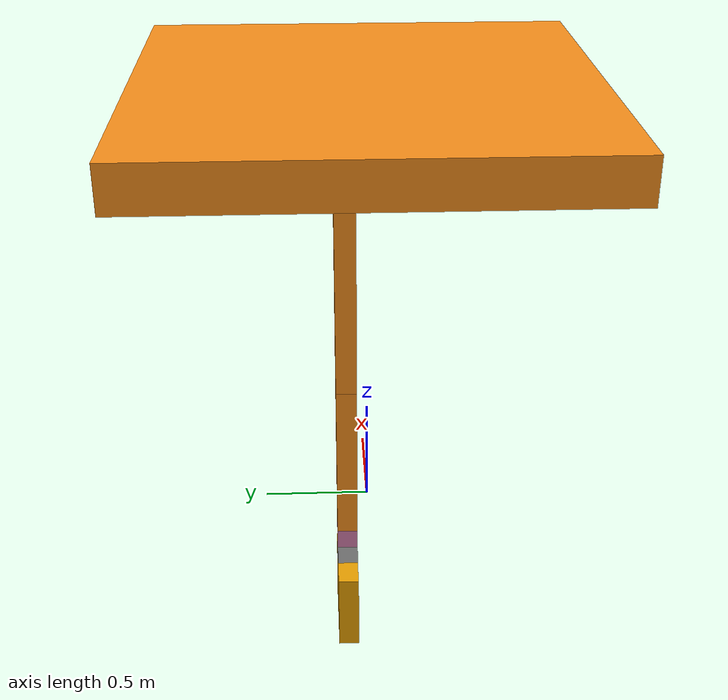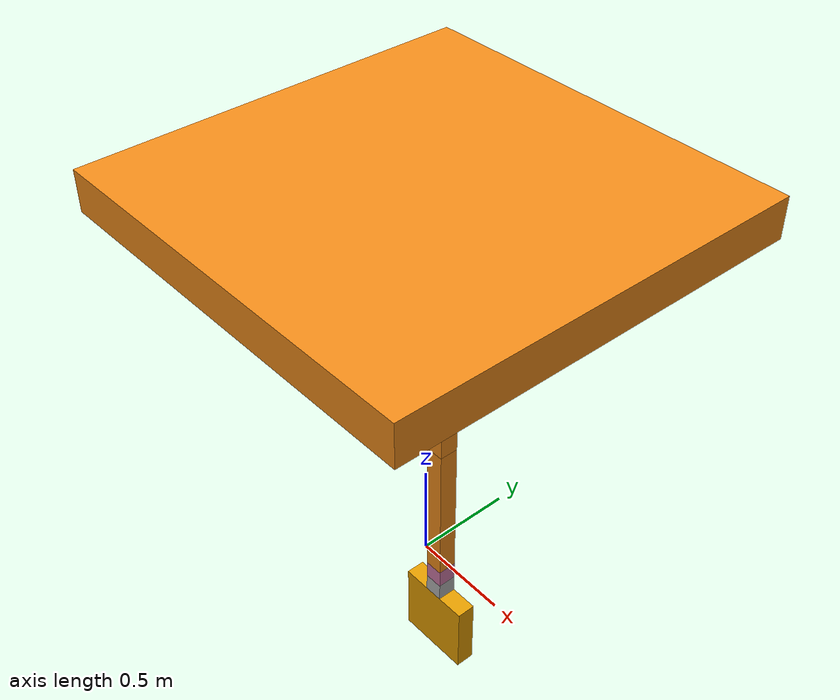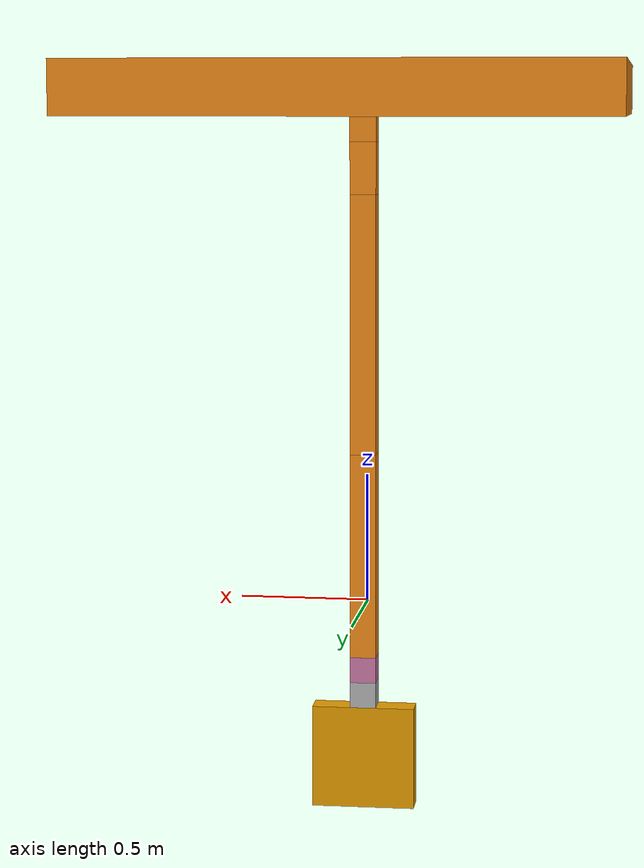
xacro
<?xml version='1.0'?>
<robot name="manipulator" xmlns:xacro="http://www.ros.org/wiki/xacro">

<!--constants of the manipulator, characterstics-->
<!-- Constants for robot dimensions -->
<xacro:property name="width" value="0.1" />
<xacro:property name="height1" value="2" />
<xacro:property name="height2" value="1" />
<xacro:property name="height3" value="1" />
<xacro:property name="mass1" value="10" />
<xacro:property name="mass2" value="7" />
<xacro:property name="mass3" value="5" />
<xacro:property name="mass4" value="1" />
<xacro:property name="mass5" value="0.8" />
<xacro:property name="axle_offset" value="0.05" />
<xacro:property name="damp" value="0.7" />

  <!-- Import all Gazebo-customization elements, including Gazebo colors -->
  <xacro:include filename="$(find aeriaman)/urdf/man.gazebo" />
  <!-- Import Rviz colors -->
  <!--xacro:include filename="$(find aeriaman)/urdf/materials.xacro" /-->

  <!-- Used for fixing robot to Gazebo 'base_link' -->
  <link name="world"/>

  <joint name="fixed" type="fixed">
    <parent link="world"/>
    <child link="base_link"/>
  </joint>

<!-- Base Link -->
<link name="base_link">
<visual> <origin xyz="0 0 2" rpy="0 0 0" /> <geometry> <box size= "2 2 0.2" /> <material name="blue"> <color rgba="0 0 .8 1"/> </material></geometry> </visual>
<collision> <origin xyz="0 0 2" rpy="0 0 0" /> <geometry> <box size= "2 2 0.2" /> </geometry> </collision>
<inertial> <origin xyz="0 0 2" rpy="0 0 0" /> <mass value="${mass1}" /> <inertia ixx="${mass1 / 12.0 * (2*2 + 0.2*0.2)}" ixy="0.0" ixz="0.0"
iyy="${mass1 / 12.0 * (0.2*0.2 + 2*2)}" iyz="0.0"
izz="${mass1 / 12.0 * (2*2 + 2*2)}"/> </inertial>

</link>

<!-- done== origin from the center of gravity-->
<!-- Joint -->
<joint name="jf" type="fixed">
<parent link="base_link" /> <child link="sh_link" />
<origin xyz="0 ${width} -0.1" rpy="0 0 0" />
<axis xyz="0 0 0" /> <dynamics damping="${damp}" />
<limit effort="0" velocity="0" lower="0" upper="0" /> </joint>

<!-- done== origin from the last link size l1zorigin-l1zsize+l2zsize/2-->
<!-- Link -->
<link name="sh_link">
<visual> <origin xyz="0 0 1.95" rpy="0 0 0" /> <geometry> <box size= "0.1 0.1 0.1" /> <material name="blue"> <color rgba="0 0 .8 1"/> </material></geometry> </visual>
<collision> <origin xyz="0 0 1.95" rpy="0 0 0" /> <geometry> <box size= "0.1 0.1 0.1" /> </geometry> </collision>
<inertial> <origin xyz="0 0 1.95" rpy="0 0 0" /> <mass value="${mass2}" />
<inertia ixx="${mass2 / 12.0 * (0.1*0.1 + 0.1*0.1)}" ixy="0.0" ixz="0.0"
iyy="${mass2 / 12.0 * (0.1*0.1 + 0.1*0.1)}" iyz="0.0"
izz="${mass2 / 12.0 * (0.1*0.1 + 0.1*0.1)}"/> </inertial>
</link>

<!-- Joint -->
<joint name="j1" type="revolute">
<parent link="sh_link" /> <child link="arm_shlink" />
<origin xyz="0 0 1.9" rpy="0 0 0" />
<axis xyz="0 1 0"/> <dynamics damping="${damp}" />
<limit effort="1000.0" velocity="0.5" lower="-1.5" upper="1.5" />
</joint>

<!-- Link -->
<link name="arm_shlink">
<visual> <origin xyz="0 0 -0.1" rpy="0 0 0" /> <geometry> <box size= "0.1 0.1 0.2" /> <material name="blue"> <color rgba="0 0 .8 1"/> </material></geometry> </visual>
<collision> <origin xyz="0 0 -0.1" rpy="0 0 0" /> <geometry> <box size= "0.1 0.1 0.2" /> </geometry> </collision>
<inertial> <origin xyz="0 0 -0.1" rpy="0 0 0" /> <mass value="${mass3}" /> <inertia
ixx="${mass3 / 12.0 * (0.1*0.1 + 0.2*0.2)}" ixy="0.0" ixz="0.0"
iyy="${mass3 / 12.0 * (0.2*0.2 + 0.1*0.1)}" iyz="0.0"
izz="${mass3 / 12.0 * (0.1*0.1 + 0.1*0.1)}"/> </inertial>
</link>
<!-- done link== origin from the center of gravity-->

<!-- Joint -->
<joint name="j2" type="revolute">
<parent link="arm_shlink" /> <child link="forearm_link" />
<origin xyz="0 0 -0.2" rpy="0 0 0" />
<axis xyz="1 0 0" /> <dynamics damping="${damp}" />
<limit effort="1000.0" velocity="0.5" lower="-1.5" upper="1.5" /> </joint>
<!-- done joint== origin from the last link's size-->
<!-- Link -->
<link name="forearm_link">
<visual> <origin xyz="0 0 -0.5" rpy="0 0 0" /> <geometry> <box size= "0.1 0.1 1" /> <material name="blue"> <color rgba="0 0 .8 1"/> </material></geometry> </visual>
<collision> <origin xyz="0 0 -0.5" rpy="0 0 0" /> <geometry> <box size= "0.1 0.1 1" /> </geometry> </collision>
<inertial> <origin xyz="0 0 -0.5" rpy="0 0 0" /> <mass value="${mass4}" /> <inertia
ixx="${mass4 / 12.0 * (0.1*0.1 + 1)}" ixy="0.0" ixz="0.0"
iyy="${mass4 / 12.0 * (1 + 0.1*0.1)}" iyz="0.0"
izz="${mass4 / 12.0 * (0.1*0.1 + 0.1*0.1)}"/> </inertial>
</link>

<!-- done link== origin from the center of gravity-->
<!-- Joint -->
<joint name="j3" type="revolute">
<parent link="forearm_link" /> <child link="arm_link" />
<origin xyz="0 0 -1" rpy="0 0 0" />
<axis xyz="1 0 0" /> <dynamics damping="${damp}" />
<limit effort="1000.0" velocity="0.5" lower="-1.5" upper="1.5" /> </joint>
<!-- done joint== origin from the last link's size-->
<!-- Link -->
<link name="arm_link">
<visual> <origin xyz="0 0 -0.4" rpy="0 0 0" /> <geometry> <box size= "0.1 0.1 0.8" /> <material name="blue"> <color rgba="0 0 .8 1"/> </material></geometry> </visual>
<collision> <origin xyz="0 0 -0.4" rpy="0 0 0" /> <geometry> <box size= "0.1 0.1 0.8" /> </geometry> </collision>
<inertial> <origin xyz="0 0 -0.4" rpy="0 0 0" /> <mass value="${mass5}" /> <inertia ixx="${mass5 / 12.0 * (0.1*0.1 + 0.8*0.8)}" ixy="0.0" ixz="0.0"
iyy="${mass5 / 12.0 * (0.8*0.8 + 0.1*0.1)}" iyz="0.0"
izz="${mass5 / 12.0 * (0.1*0.1 + 0.1*0.1)}"/> </inertial>
</link>

<!-- done link== origin from the center of gravity-->
<!-- Joint -->
<joint name="j4" type="revolute">
<parent link="arm_link" /> <child link="hand_1_link" />
<origin xyz="0 0 -0.8" rpy="0 0 0" />
<axis xyz="0 0 1" /> <dynamics damping="${damp}" />
<limit effort="1000.0" velocity="0.5" lower="-1.5" upper="1.5" /> </joint>
<!-- done joint== origin from the last link's size-->
<!-- Link -->
<link name="hand_1_link">
<visual> <origin xyz="0 0 -0.05" rpy="0 0 0" /> <geometry> <box size= "0.1 0.1 0.1" /> <material name="blue"> <color rgba="0 0 .8 1"/> </material></geometry> </visual>
<collision> <origin xyz="0 0 -0.05" rpy="0 0 0" /> <geometry> <box size= "0.1 0.1 0.8" /> </geometry> </collision>
<inertial> <origin xyz="0 0 -0.05" rpy="0 0 0" /> <mass value="${mass5}" /> <inertia ixx="${mass5 / 12.0 * (0.1*0.1 + 0.8*0.8)}" ixy="0.0" ixz="0.0"
iyy="${mass5 / 12.0 * (0.8*0.8 + 0.1*0.1)}" iyz="0.0"
izz="${mass5 / 12.0 * (0.1*0.1 + 0.1*0.1)}"/> </inertial>
</link>

<!-- done link== origin from the center of gravity-->
<!-- Joint -->
<joint name="j5" type="revolute">
<parent link="hand_1_link" /> <child link="hand_2_link" />
<origin xyz="0 0 -0.1" rpy="0 0 0" />
<axis xyz="1 0 0" /> <dynamics damping="${damp}" />
<limit effort="1000.0" velocity="0.5" lower="-1.5" upper="1.5" /> </joint>
<!-- done joint== origin from the last link's size-->
<!-- Link -->
<link name="hand_2_link">
<visual> <origin xyz="0 0 -0.05" rpy="0 0 0" /> <geometry> <box size= "0.1 0.1 0.1" /> <material name="blue"> <color rgba="0 0 .8 1"/> </material></geometry> </visual>
<collision> <origin xyz="0 0 -0.05" rpy="0 0 0" /> <geometry> <box size= "0.1 0.1 0.8" /> </geometry> </collision>
<inertial> <origin xyz="0 0 -0.05" rpy="0 0 0" /> <mass value="${mass5}" /> <inertia ixx="${mass5 / 12.0 * (0.1*0.1 + 0.8*0.8)}" ixy="0.0" ixz="0.0"
iyy="${mass5 / 12.0 * (0.8*0.8 + 0.1*0.1)}" iyz="0.0"
izz="${mass5 / 12.0 * (0.1*0.1 + 0.1*0.1)}"/> </inertial>
</link>

<!-- done link== origin from the center of gravity-->
<!-- Joint -->
<joint name="j6" type="revolute">
<parent link="hand_2_link" /> <child link="hand_3_link" />
<origin xyz="0 0 -0.1" rpy="0 0 0" />
<axis xyz="0 1 0" /> <dynamics damping="${damp}" />
<limit effort="1000.0" velocity="0.5" lower="-1.5" upper="1.5" /> </joint>
<!-- done joint== origin from the last link's size-->
<!-- Link -->
<link name="hand_3_link">
<visual> <origin xyz="0 0 -0.2" rpy="0 0 0" /> <geometry> <box size= "0.4 0.1 0.4" /> <material name="blue"> <color rgba="0 0 .8 1"/> </material></geometry> </visual>
<collision> <origin xyz="0 0 -0.05" rpy="0 0 0" /> <geometry> <box size= "0.1 0.1 0.8" /> </geometry> </collision>
<inertial> <origin xyz="0 0 -0.05" rpy="0 0 0" /> <mass value="${mass5}" /> <inertia ixx="${mass5 / 12.0 * (0.1*0.1 + 0.8*0.8)}" ixy="0.0" ixz="0.0"
iyy="${mass5 / 12.0 * (0.8*0.8 + 0.1*0.1)}" iyz="0.0"
izz="${mass5 / 12.0 * (0.1*0.1 + 0.1*0.1)}"/> </inertial>
</link>

<transmission name="t1">
    <type>transmission_interface/SimpleTransmission</type>
    <joint name="j1">
      <hardwareInterface>hardware_interface/EffortJointInterface</hardwareInterface>
    </joint>
    <actuator name="m1">
      <hardwareInterface>hardware_interface/EffortJointInterface</hardwareInterface>
      <mechanicalReduction>1</mechanicalReduction>
    </actuator>
</transmission>

<transmission name="t2">
    <type>transmission_interface/SimpleTransmission</type>
    <joint name="j2">
      <hardwareInterface>hardware_interface/EffortJointInterface</hardwareInterface>
    </joint>
    <actuator name="m2">
      <hardwareInterface>hardware_interface/EffortJointInterface</hardwareInterface>
      <mechanicalReduction>1</mechanicalReduction>
    </actuator>
</transmission>

<transmission name="t3">
    <type>transmission_interface/SimpleTransmission</type>
    <joint name="j3">
      <hardwareInterface>hardware_interface/EffortJointInterface</hardwareInterface>
    </joint>
    <actuator name="m3">
      <hardwareInterface>hardware_interface/EffortJointInterface</hardwareInterface>
      <mechanicalReduction>1</mechanicalReduction>
    </actuator>
</transmission>

<transmission name="t4">
    <type>transmission_interface/SimpleTransmission</type>
    <joint name="j4">
      <hardwareInterface>hardware_interface/EffortJointInterface</hardwareInterface>
    </joint>
    <actuator name="m4">
      <hardwareInterface>hardware_interface/EffortJointInterface</hardwareInterface>
      <mechanicalReduction>1</mechanicalReduction>
    </actuator>
</transmission>

<transmission name="t5">
    <type>transmission_interface/SimpleTransmission</type>
    <joint name="j5">
      <hardwareInterface>hardware_interface/EffortJointInterface</hardwareInterface>
    </joint>
    <actuator name="m5">
      <hardwareInterface>hardware_interface/EffortJointInterface</hardwareInterface>
      <mechanicalReduction>1</mechanicalReduction>
    </actuator>
</transmission>

<transmission name="t6">
    <type>transmission_interface/SimpleTransmission</type>
    <joint name="j6">
      <hardwareInterface>hardware_interface/EffortJointInterface</hardwareInterface>
    </joint>
    <actuator name="m6">
      <hardwareInterface>hardware_interface/EffortJointInterface</hardwareInterface>
      <mechanicalReduction>1</mechanicalReduction>
    </actuator>
</transmission>

</robot>
